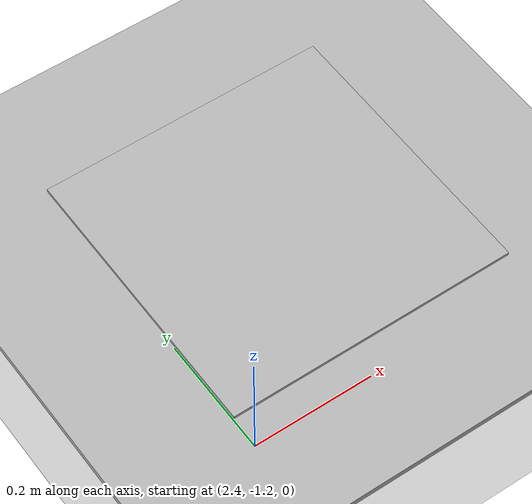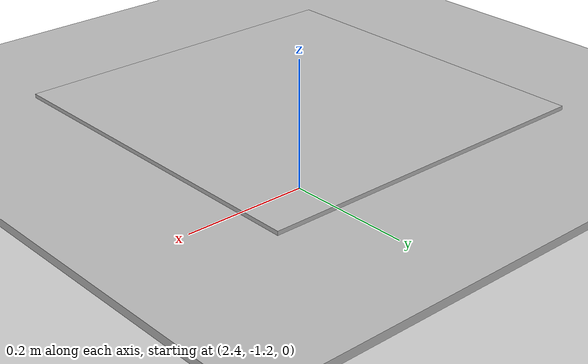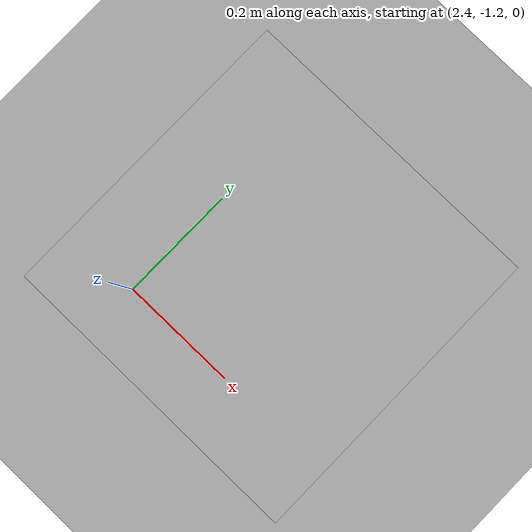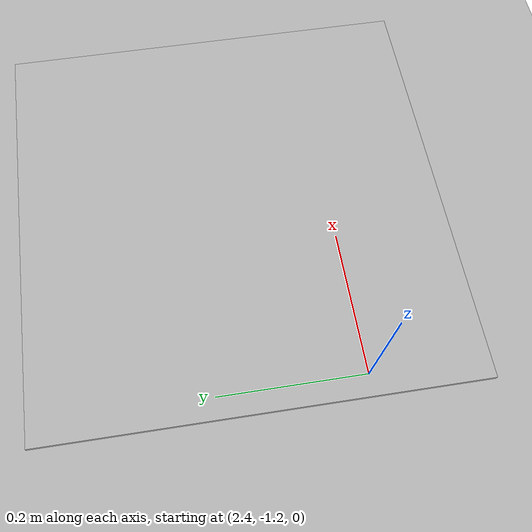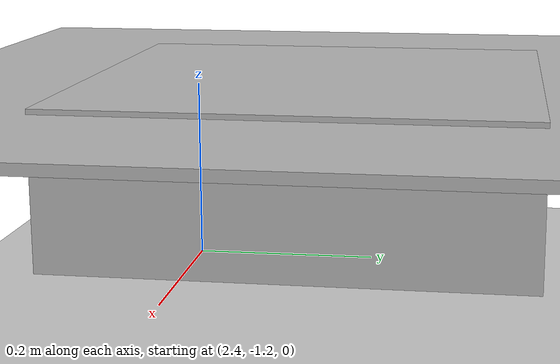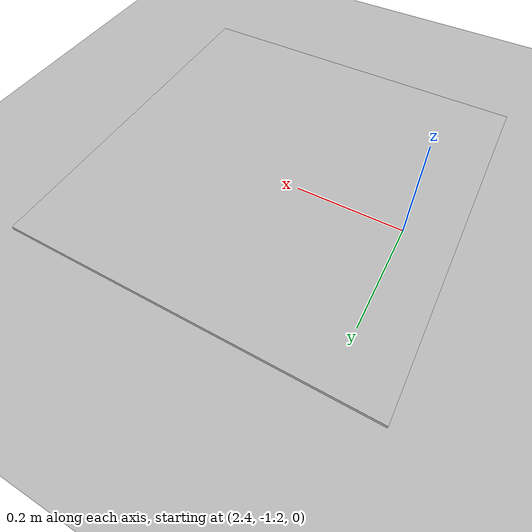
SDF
<sdf version='1.6'>
  <world name='default'>
    <light name='sun' type='directional'>
      <cast_shadows>1</cast_shadows>
      <pose frame=''>0 0 10 0 -0 0</pose>
      <diffuse>0.8 0.8 0.8 1</diffuse>
      <specular>0.2 0.2 0.2 1</specular>
      <attenuation>
        <range>1000</range>
        <constant>0.9</constant>
        <linear>0.01</linear>
        <quadratic>0.001</quadratic>
      </attenuation>
      <direction>-0.5 0.1 -0.9</direction>
    </light>
    <model name='ground_plane'>
      <static>1</static>
      <link name='link'>
        <collision name='collision'>
          <geometry>
            <plane>
              <normal>0 0 1</normal>
              <size>100 100</size>
            </plane>
          </geometry>
          <surface>
            <contact>
              <collide_bitmask>65535</collide_bitmask>
              <ode/>
            </contact>
            <friction>
              <ode>
                <mu>100</mu>
                <mu2>50</mu2>
              </ode>
              <torsional>
                <ode/>
              </torsional>
            </friction>
            <bounce/>
          </surface>
          <max_contacts>10</max_contacts>
        </collision>
        <visual name='visual'>
          <cast_shadows>0</cast_shadows>
          <geometry>
            <plane>
              <normal>0 0 1</normal>
              <size>100 100</size>
            </plane>
          </geometry>
          <material>
            <script>
              <uri>file://media/materials/scripts/gazebo.material</uri>
              <name>Gazebo/Grey</name>
            </script>
          </material>
        </visual>
        <self_collide>0</self_collide>
        <enable_wind>0</enable_wind>
        <kinematic>0</kinematic>
      </link>
    </model>
    <model name="helipad_mobile">
      <pose>1.547476 -1.041792 0.1 0 0 0</pose>
      <self_collide>false</self_collide>
      <joint name="helipad_fix5" type="fixed">
        <pose>0 0 0 0 0 0</pose>
        <parent>helipad_link</parent>
        <child>helipad_moving_link</child>
      </joint>
      <link name="helipad_link">
        <pose>1 0 0.125 0 0 0</pose>
        <inertial>
          <mass>10</mass>
        </inertial>
        <collision name="wall_brand_collision">
          <geometry>
            <box>
              <size>1.5 1.5 0.01</size>
            </box>
          </geometry>
          <surface>
            <contact>
              <collide_bitmask>0x02</collide_bitmask>
            </contact>
          </surface>
        </collision>
        <visual name="helipad_visual">
          <geometry>
            <box>
              <size>1.5 1.5 0.01</size>
            </box>
          </geometry>
        </visual>
      </link>
      <link name="helipad_moving_link">
        <pose>1 0 0.06 0 0 0</pose>
        <inertial>
          <mass>10</mass>
        </inertial>
        <collision name="wall_brand_collision">
          <geometry>
            <mesh>
              <uri>/home/vishal/vishal_testing/drone-simulation-ws/src/drone_gazebo/models/auroc.dae</uri>
            </mesh>
          </geometry>
          <surface>
            <contact>
              <collide_bitmask>0x02</collide_bitmask>
            </contact>
          </surface>
        </collision>
        <visual name="helipad_visual">
          <geometry>
            <mesh>
              <uri>/home/vishal/vishal_testing/drone-simulation-ws/src/drone_gazebo/models/auroc.dae</uri>
            </mesh>
          </geometry>
        </visual>
      </link>
    </model>
    <gravity>0 0 -9.8</gravity>
    <magnetic_field>6e-06 2.3e-05 -4.2e-05</magnetic_field>
    <atmosphere type='adiabatic'/>
    <physics name='default_physics' default='0' type='ode'>
      <max_step_size>0.001</max_step_size>
      <real_time_factor>1</real_time_factor>
      <real_time_update_rate>1000</real_time_update_rate>
    </physics>
    <scene>
      <ambient>0.4 0.4 0.4 1</ambient>
      <background>0.7 0.7 0.7 1</background>
      <shadows>1</shadows>
    </scene>
    <audio>
      <device>default</device>
    </audio>
    <wind/>
    <spherical_coordinates>
      <surface_model>EARTH_WGS84</surface_model>
      <latitude_deg>0</latitude_deg>
      <longitude_deg>0</longitude_deg>
      <elevation>0</elevation>
      <heading_deg>0</heading_deg>
    </spherical_coordinates>
    <gui fullscreen='0'>
      <camera name='user_camera'>
        <pose frame=''>16.4076 -20.0749 8.73855 -0.003514 0.660915 2.17847</pose>
        <view_controller>orbit</view_controller>
        <projection_type>perspective</projection_type>
      </camera>
    </gui>
  </world>
</sdf>
